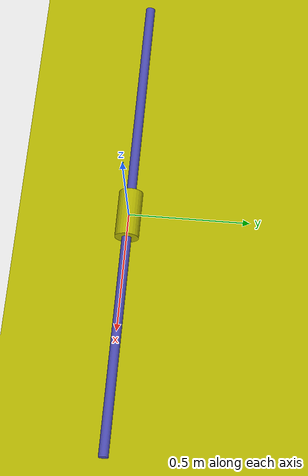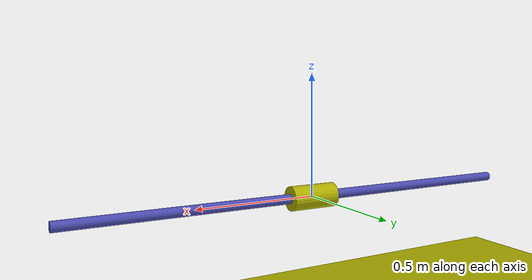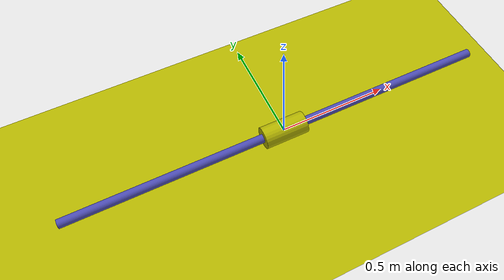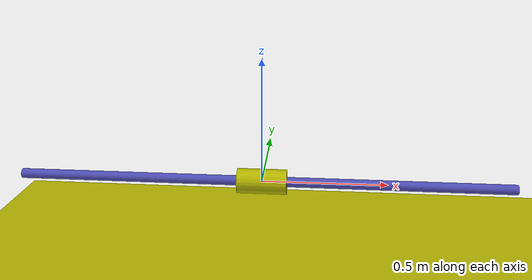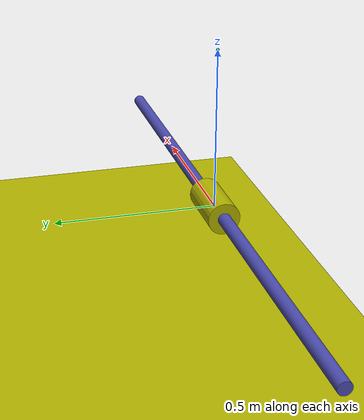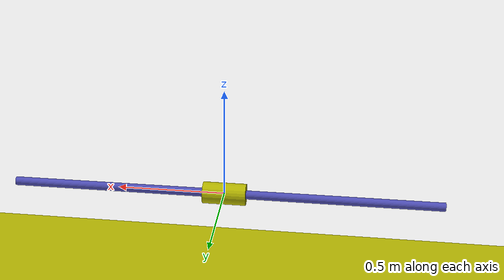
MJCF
<mujoco model="inverted pendulum">
	<compiler inertiafromgeom="true" />
	<default>
		<joint armature="0" damping="1" limited="true" />
		<geom contype="0" friction="1 0.1 0.1" rgba="0.7 0.7 0 1" />
		<tendon />
		<motor ctrlrange="-3 3" />
	</default>
	<option gravity="0 0 -9.81" integrator="RK4" timestep="0.02" />
	<visual>
		<headlight ambient="0.3 0.3 0.3" diffuse="0.7 0.7 0.7" specular="0.1 0.1 0.1" />
	</visual>
	<size nstack="3000" />
	<worldbody>
		<geom name="ground" type="plane" pos="0 0 -0.5" size="4 4 .4" />
		<geom name="rail" pos="0 0 0" quat="0.707 0 0.707 0" rgba="0.3 0.3 0.7 1" size="0.02 1"
			type="cylinder" />
		<body name="cart" pos="0 0 0">
			<joint axis="1 0 0" limited="true" name="slider" pos="0 0 0" range="-1 1" type="slide" />
			<geom name="cart" pos="0 0 0" quat="0.707 0 0.707 0" size="0.05 0.1" type="cylinder" />

		</body>
			<body name="pole" pos="0 0 0">
				<freejoint />
				<geom fromto="0 0 0.5 0.001 0 0.5" name="cpole" rgba="0 0.7 0.7 1" size="0.0049 0.3"
					type="cylinder" />
			</body>
	</worldbody>
	<actuator>
		<motor ctrllimited="true" ctrlrange="-3 3" gear="100" joint="slider" name="slide" />
	</actuator>
</mujoco>
